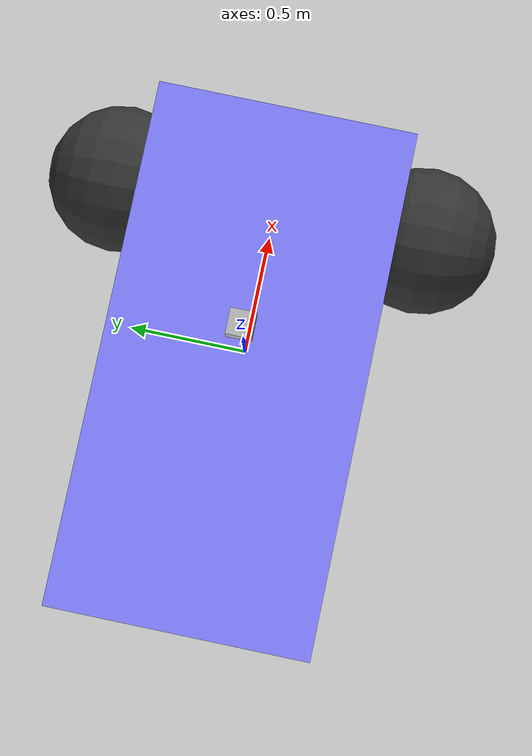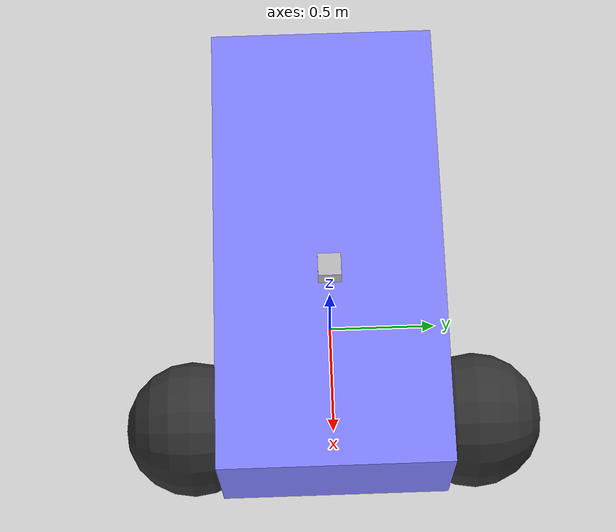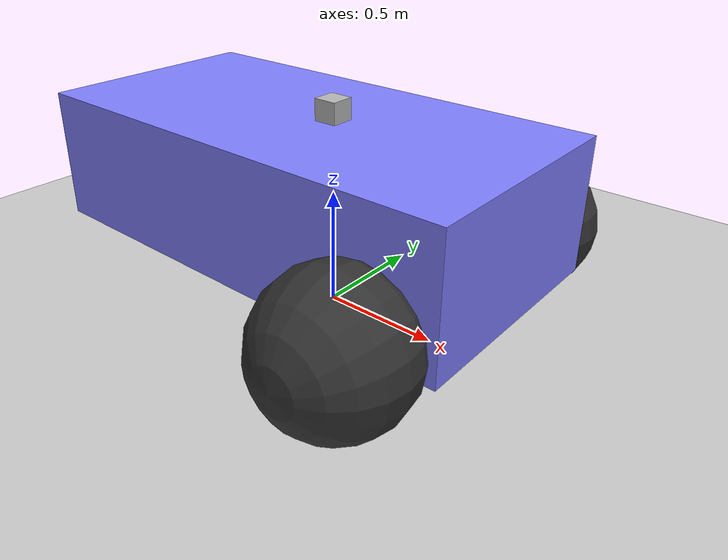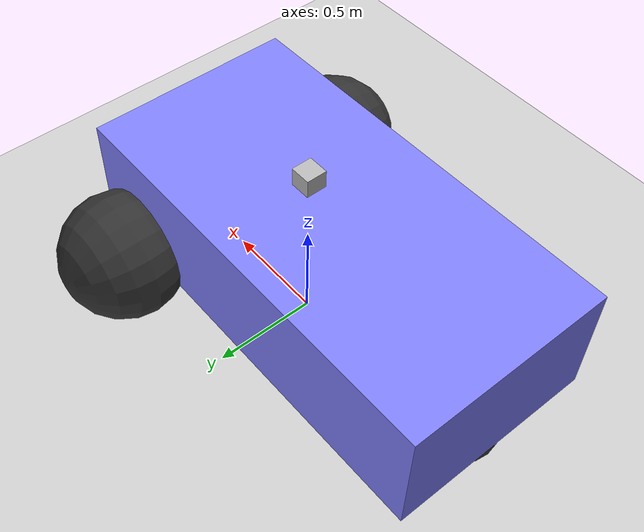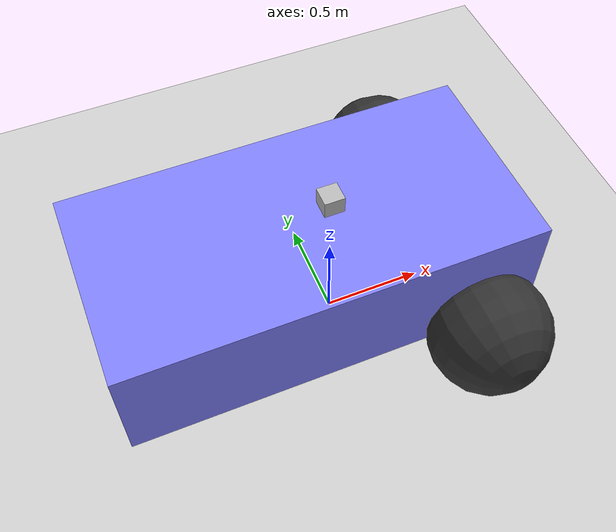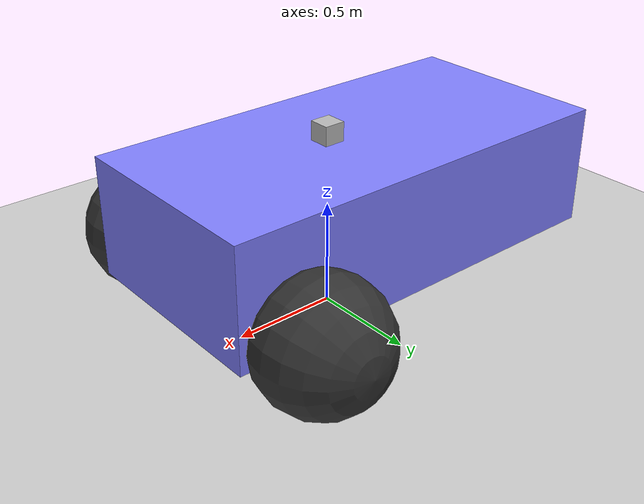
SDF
<?xml version="1.0" ?>
<sdf version="1.8">
  <world name="spherical_world">
    <plugin
      filename="ignition-gazebo-physics-system"
      name="gz::sim::systems::Physics">
    </plugin>
    <plugin
      filename="ignition-gazebo-sensors-system"
      name="gz::sim::systems::Sensors">
      <render_engine>ogre2</render_engine>
    </plugin>
    <plugin
      filename="ignition-gazebo-scene-broadcaster-system"
      name="gz::sim::systems::SceneBroadcaster">
    </plugin>
    <plugin
      filename="ignition-gazebo-user-commands-system"
      name="gz::sim::systems::UserCommands">
    </plugin>
    <!-- Processes the NavSat sensor -->
        <plugin
        filename="ignition-gazebo-navsat-system"
        name="ignition::gazebo::systems::NavSat">
    </plugin>

    <light name="sun" type="directional">
      <cast_shadows>true</cast_shadows>
      <pose>0 0 10 0 0 0</pose>
      <diffuse>0.8 0.8 0.8 1</diffuse>
      <specular>0.2 0.2 0.2 1</specular>
      <attenuation>
        <range>1000</range>
        <constant>0.9</constant>
        <linear>0.01</linear>
        <quadratic>0.001</quadratic>
      </attenuation>
      <direction>-0.5 0.1 -0.9</direction>
    </light>

    <model name="ground_plane">
      <static>true</static>
      <link name="link">
        <collision name="collision">
          <geometry>
            <plane>
              <normal>0 0 1</normal>
              <size>100 100</size>
            </plane>
          </geometry>
        </collision>
        <visual name="visual">
          <geometry>
            <plane>
              <normal>0 0 1</normal>
              <size>100 100</size>
            </plane>
          </geometry>
          <material>
            <ambient>0.8 0.8 0.8 1</ambient>
            <diffuse>0.8 0.8 0.8 1</diffuse>
            <specular>0.8 0.8 0.8 1</specular>
          </material>
        </visual>
      </link>
    </model>

    <model name="pinpointBot">
      <self_collide>true</self_collide>
      <pose>0 0 0.35 0 0 0</pose>
      <include merge="true">
        <uri>package://pinpointbot_description/models/pinpointModel.sdf</uri>
      </include>

      <plugin
        filename="ignition-gazebo-joint-state-publisher-system"
        name="ignition::gazebo::systems::JointStatePublisher">
      </plugin>

      <plugin
        filename="ignition-gazebo-pose-publisher-system"
        name="ignition::gazebo::systems::PosePublisher">
        <publish_link_pose>true</publish_link_pose>
        <use_pose_vector_msg>true</use_pose_vector_msg>
        <static_publisher>true</static_publisher>
        <static_update_frequency>1</static_update_frequency>
      </plugin>

      <plugin
        filename="ignition-gazebo-odometry-publisher-system"
        name="ignition::gazebo::systems::OdometryPublisher">
        <odom_frame>diff_drive/odom</odom_frame>
        <robot_base_frame>diff_drive</robot_base_frame>
      </plugin>
    </model>

    <spherical_coordinates>
      <surface_model>EARTH_WGS84</surface_model>
      <world_frame_orientation>ENU</world_frame_orientation>
      <latitude_deg>-22.9</latitude_deg>
      <longitude_deg>-43.2</longitude_deg>
      <elevation>0</elevation>
      <heading_deg>0</heading_deg>
    </spherical_coordinates>
  </world>
</sdf>

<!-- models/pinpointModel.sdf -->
<sdf version="1.8">
    <model name='diff_drive'>
      <link name='chassis'>
        <pose>-0.151427 -0 0.175 0 -0 0</pose>
        <inertial>
          <mass>1.14395</mass>
          <inertia>
            <ixx>0.126164</ixx>
            <ixy>0</ixy>
            <ixz>0</ixz>
            <iyy>0.416519</iyy>
            <iyz>0</iyz>
            <izz>0.481014</izz>
          </inertia>
        </inertial>
        <visual name='visual_chassis'>
          <geometry>
            <box>
              <size>2.01142 1 0.568726</size>
            </box>
          </geometry>
          <material>
            <ambient>0.5 0.5 1.0 1</ambient>
            <diffuse>0.5 0.5 1.0 1</diffuse>
            <specular>0.0 0.0 1.0 1</specular>
          </material>
        </visual>
        <collision name='collision_chassis'>
          <geometry>
            <box>
              <size>2.01142 1 0.568726</size>
            </box>
          </geometry>
        </collision>

        <sensor name="navsat" type="navsat">
          <always_on>1</always_on>
          <update_rate>1</update_rate>
          <topic>navsat</topic>
        </sensor>
      </link>

      <link name='left_wheel'>
        <pose>0.554283 0.625029 -0.025 -1.5707 0 0</pose>
        <inertial>
          <mass>2</mass>
          <inertia>
            <ixx>0.145833</ixx>
            <ixy>0</ixy>
            <ixz>0</ixz>
            <iyy>0.145833</iyy>
            <iyz>0</iyz>
            <izz>0.125</izz>
          </inertia>
        </inertial>
        <visual name='visual_left_wheel'>
          <geometry>
            <sphere>
              <radius>0.3</radius>
            </sphere>
          </geometry>
          <material>
            <ambient>0.2 0.2 0.2 1</ambient>
            <diffuse>0.2 0.2 0.2 1</diffuse>
            <specular>0.2 0.2 0.2 1</specular>
          </material>
        </visual>
        <collision name='collision_left_wheel'>
          <geometry>
            <sphere>
              <radius>0.3</radius>
            </sphere>
          </geometry>
        </collision>
      </link>

      <link name='right_wheel'>
        <pose>0.554282 -0.625029 -0.025 -1.5707 0 0</pose>
        <inertial>
          <mass>2</mass>
          <inertia>
            <ixx>0.145833</ixx>
            <ixy>0</ixy>
            <ixz>0</ixz>
            <iyy>0.145833</iyy>
            <iyz>0</iyz>
            <izz>0.125</izz>
          </inertia>
        </inertial>
        <visual name='visual_right_wheel'>
          <geometry>
            <sphere>
              <radius>0.3</radius>
            </sphere>
          </geometry>
          <material>
            <ambient>0.2 0.2 0.2 1</ambient>
            <diffuse>0.2 0.2 0.2 1</diffuse>
            <specular>0.2 0.2 0.2 1</specular>
          </material>
        </visual>
        <collision name='collision_right_wheel'>
          <geometry>
            <sphere>
              <radius>0.3</radius>
            </sphere>
          </geometry>
        </collision>
      </link>

      <link name='caster'>
        <pose>-0.957138 -0 -0.125 0 -0 0</pose>
        <inertial>
          <mass>1</mass>
          <inertia>
            <ixx>0.1</ixx>
            <ixy>0</ixy>
            <ixz>0</ixz>
            <iyy>0.1</iyy>
            <iyz>0</iyz>
            <izz>0.1</izz>
          </inertia>
        </inertial>
        <visual name='visual_caster'>
          <geometry>
            <sphere>
              <radius>0.2</radius>
            </sphere>
          </geometry>
          <material>
            <ambient>0.2 0.2 0.2 1</ambient>
            <diffuse>0.2 0.2 0.2 1</diffuse>
            <specular>0.2 0.2 0.2 1</specular>
          </material>
        </visual>
        <collision name='collision_caster'>
          <geometry>
            <sphere>
              <radius>0.2</radius>
            </sphere>
          </geometry>
        </collision>
      </link>

      <link name="lidar_link">
        <pose>0 0 0.5 0 0 0</pose>
        <inertial>
          <mass>0.1</mass>
          <inertia>
            <ixx>0.000166667</ixx>
            <iyy>0.000166667</iyy>
            <izz>0.000166667</izz>
          </inertia>
        </inertial>
        <collision name="collision">
          <geometry>
            <box>
              <size>0.1 0.1 0.1</size>
            </box>
          </geometry>
        </collision>
        <visual name="visual">
          <geometry>
            <box>
              <size>0.1 0.1 0.1</size>
            </box>
          </geometry>
        </visual>
        <sensor name='gpu_lidar' type='gpu_lidar'>
          <pose>0 0 0 0 0 0</pose>
          <topic>scan</topic>
          <ignition_frame_id>diff_drive/lidar_link</ignition_frame_id>
          <update_rate>10</update_rate>
          <lidar>
            <scan>
              <horizontal>
                <samples>640</samples>
                <resolution>1</resolution>
                <min_angle>-1.396263</min_angle>
                <max_angle>1.396263</max_angle>
              </horizontal>
              <vertical>
                <samples>1</samples>
                <resolution>1</resolution>
                <min_angle>0.0</min_angle>
                <max_angle>0.0</max_angle>
              </vertical>
            </scan>
            <range>
              <min>0.08</min>
              <max>10.0</max>
              <resolution>0.01</resolution>
            </range>
          </lidar>
          <visualize>true</visualize>
        </sensor>
      </link>

      <joint name='lidar_joint' type='fixed'>
        <parent>chassis</parent>
        <child>lidar_link</child>
      </joint>

      <joint name='left_wheel_joint' type='revolute'>
        <parent>chassis</parent>
        <child>left_wheel</child>
        <axis>
          <xyz>0 0 1</xyz>
          <limit>
            <lower>-1.79769e+308</lower>
            <upper>1.79769e+308</upper>
          </limit>
        </axis>
      </joint>

      <joint name='right_wheel_joint' type='revolute'>
        <parent>chassis</parent>
        <child>right_wheel</child>
        <axis>
          <xyz>0 0 1</xyz>
          <limit>
            <lower>-1.79769e+308</lower>
            <upper>1.79769e+308</upper>
          </limit>
        </axis>
      </joint>

      <joint name='caster_wheel' type='ball'>
        <parent>chassis</parent>
        <child>caster</child>
      </joint>

      <plugin
        filename="ignition-gazebo-diff-drive-system"
        name="ignition::gazebo::systems::DiffDrive">
        <left_joint>left_wheel_joint</left_joint>
        <right_joint>right_wheel_joint</right_joint>
        <wheel_separation>1.25</wheel_separation>
        <wheel_radius>0.3</wheel_radius>
        <odom_publish_frequency>1</odom_publish_frequency>
        <max_linear_acceleration>1</max_linear_acceleration>
        <min_linear_acceleration>-1</min_linear_acceleration>
        <max_angular_acceleration>2</max_angular_acceleration>
        <min_angular_acceleration>-2</min_angular_acceleration>
        <max_linear_velocity>0.5</max_linear_velocity>
        <min_linear_velocity>-0.5</min_linear_velocity>
        <max_angular_velocity>1</max_angular_velocity>
        <min_angular_velocity>-1</min_angular_velocity>
      </plugin>
    </model>
</sdf>
